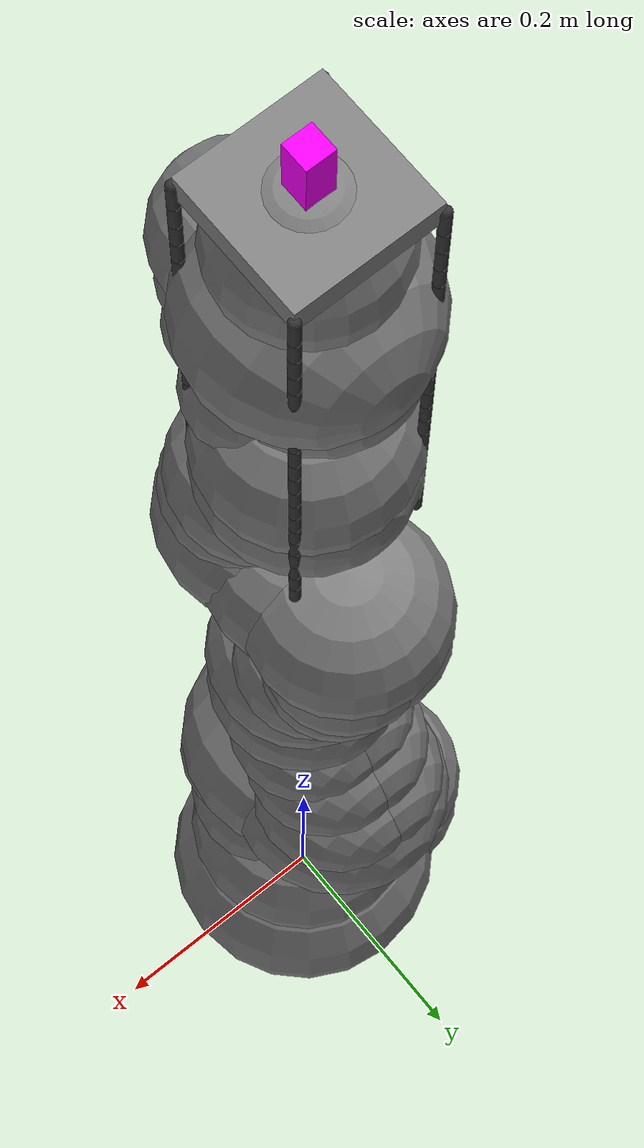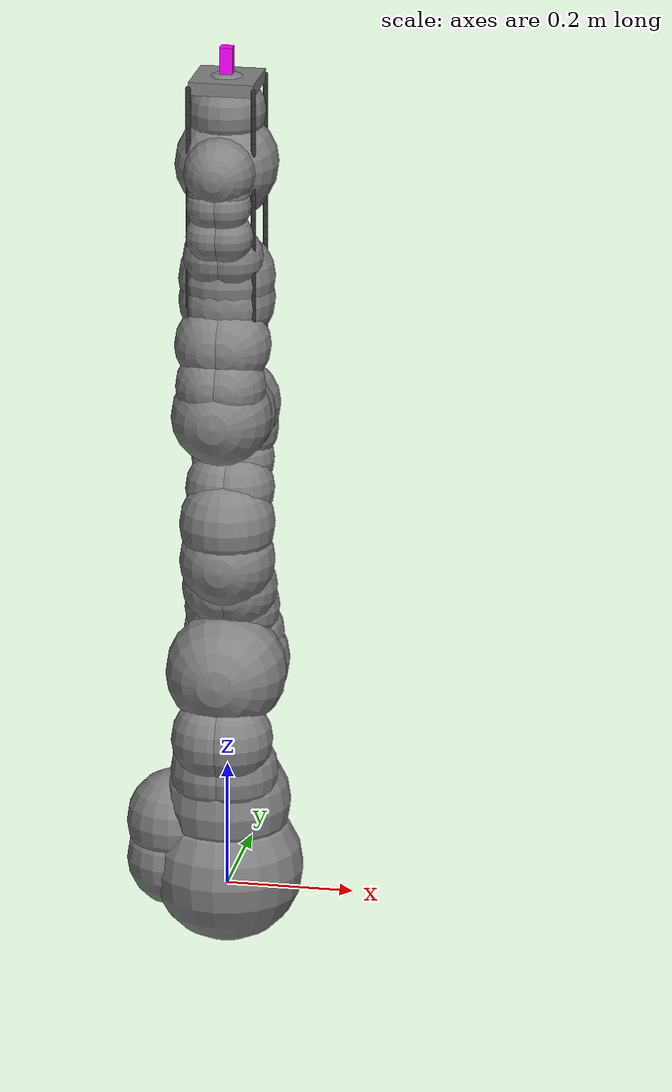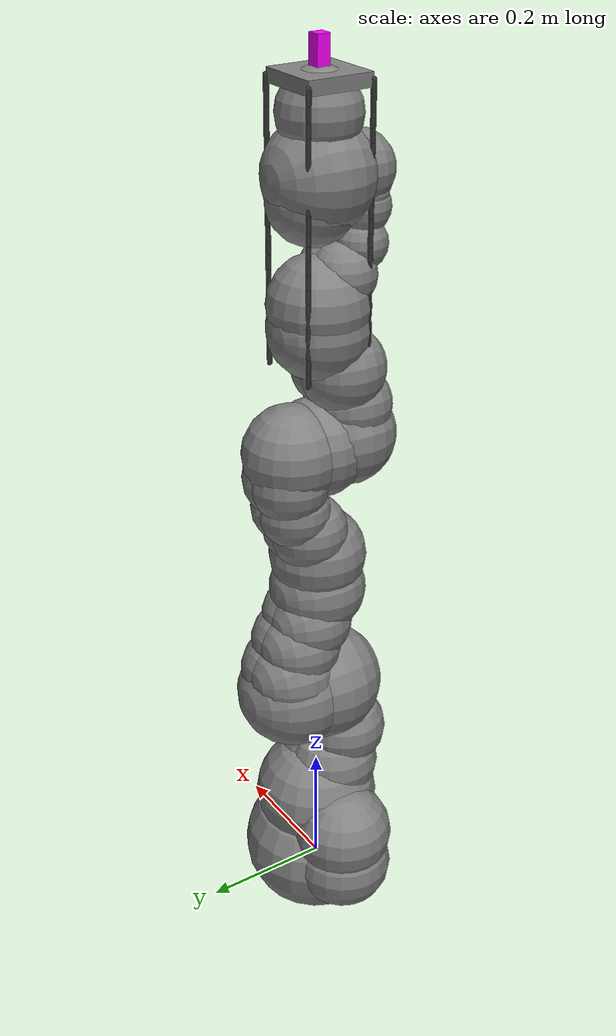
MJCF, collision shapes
<mujoco model="iiwa14">
  <compiler angle="radian" meshdir="assets" autolimits="true"/>
  <option integrator="implicitfast"/>

  <default>
    <default class="iiwa">
      <material specular="0.5" shininess="0.25"/>
      <joint axis="0 0 1" damping="1.2"/>
      <general gaintype="fixed" biastype="affine" gainprm="0" biasprm="0 -50 -5"/>
      <default class="joint1">
        <joint range="-2.96706 2.96706"/>
        <general ctrlrange="-2.96706 2.96706"/>
        <default class="joint2">
          <joint range="-2.0944 2.0944"/>
          <general ctrlrange="-2.0944 2.0944"/>
        </default>
      </default>
      <default class="joint3">
        <joint range="-3.05433 3.05433"/>
        <general ctrlrange="-3.05433 3.05433"/>
      </default>
      <default class="visual">
        <geom type="mesh" contype="0" conaffinity="0" group="2" material="gray"/>
      </default>
      <default class="collision">
        <geom group="3"/>
      </default>
      <site size="0.001" rgba="1 0 0 1" group="4"/>
    </default>
  </default>

  <asset>
    <material class="iiwa" name="gray" rgba="0.4 0.4 0.4 1"/>
    <material class="iiwa" name="light_gray" rgba="0.6 0.6 0.6 1"/>
    <material class="iiwa" name="black" rgba="0 0 0 1"/>
    <material class="iiwa" name="orange" rgba="1 0.423529 0.0392157 1"/>
    <material name="rope" rgba="0.2 0.2 0.2 1"/>

    <mesh file="link_0.obj"/>
    <mesh file="link_1.obj"/>
    <mesh file="link_2_orange.obj"/>
    <mesh file="link_2_grey.obj"/>
    <mesh file="link_3.obj"/>
    <mesh file="band.obj"/>
    <mesh file="kuka.obj"/>
    <mesh file="link_4_orange.obj"/>
    <mesh file="link_4_grey.obj"/>
    <mesh file="link_5.obj"/>
    <mesh file="link_6_orange.obj"/>
    <mesh file="link_6_grey.obj"/>
    <mesh file="link_7.obj"/>
  </asset>

  <worldbody>
    <light name="top" pos="0 0 2" mode="trackcom"/>
    <body name="base" childclass="iiwa">
      <inertial mass="5" pos="-0.1 0 0.07" diaginertia="0.05 0.06 0.03"/>
      <geom class="visual" mesh="link_0"/>
      <geom class="collision" size="0.12" pos="0 0 0.03"/>
      <geom class="collision" size="0.08" pos="-0.08 0 0.103"/>
      <geom class="collision" size="0.08" pos="-0.08 0 0.04"/>
      <geom class="collision" size="0.1" pos="0 0 0.14"/>
      <body name="link1" pos="0 0 0.1575">
        <inertial mass="5.76" pos="0 -0.03 0.12" diaginertia="0.0333 0.033 0.0123"/>
        <joint name="joint1" class="joint1"/>
        <geom class="visual" mesh="link_1"/>
        <geom class="collision" size="0.08" pos="0 0 -0.0005"/>
        <geom class="collision" size="0.075" pos="0.01 -0.025 0.0425"/>
        <geom class="collision" size="0.075" pos="-0.01 -0.025 0.0425"/>
        <geom class="collision" size="0.07" pos="0.01 -0.045 0.1025"/>
        <geom class="collision" size="0.07" pos="-0.01 -0.045 0.1025"/>
        <body name="link2" pos="0 0 0.2025" quat="0 0 1 1">
          <inertial mass="6.35" pos="0.0003 0.059 0.042" diaginertia="0.0305 0.0304 0.011" quat="0 0 1 1"/>
          <joint name="joint2" class="joint2"/>
          <geom class="visual" material="orange" mesh="link_2_orange"/>
          <geom class="visual" mesh="link_2_grey"/>
          <geom class="collision" size="0.095" pos="0 0 -0.01"/>
          <geom class="collision" size="0.09" pos="0 0 0.045"/>
          <geom class="collision" size="0.07" pos="-0.01 0.04 0.054"/>
          <geom class="collision" size="0.065" pos="-0.01 0.09 0.04"/>
          <geom class="collision" size="0.065" pos="-0.01 0.13 0.02"/>
          <geom class="collision" size="0.07" pos="0.01 0.04 0.054"/>
          <geom class="collision" size="0.065" pos="0.01 0.09 0.04"/>
          <geom class="collision" size="0.065" pos="0.01 0.13 0.02"/>
          <geom class="collision" size="0.075" pos="0 0.18 0"/>
          <body name="link3" pos="0 0.2045 0" quat="0 0 1 1">
            <inertial mass="3.5" pos="0 0.03 0.13" diaginertia="0.025 0.0238 0.0076"/>
            <joint name="joint3" class="joint1"/>
            <geom class="visual" mesh="link_3"/>
            <geom class="visual" material="light_gray" mesh="band"/>
            <geom class="visual" material="black" mesh="kuka"/>
            <geom class="collision" size="0.075" pos="0 0 0.0355"/>
            <geom class="collision" size="0.06" pos="0.01 0.023 0.0855"/>
            <geom class="collision" size="0.055" pos="0.01 0.048 0.1255"/>
            <geom class="collision" size="0.06" pos="0.01 0.056 0.1755"/>
            <geom class="collision" size="0.06" pos="-0.01 0.023 0.0855"/>
            <geom class="collision" size="0.055" pos="-0.01 0.048 0.1255"/>
            <geom class="collision" size="0.06" pos="-0.01 0.056 0.1755"/>
            <geom class="collision" size="0.075" pos="0 0.045 0.2155"/>
            <geom class="collision" size="0.075" pos="0 0 0.2155"/>
            <body name="link4" pos="0 0 0.2155" quat="1 1 0 0">
              <inertial mass="3.5" pos="0 0.067 0.034" diaginertia="0.017 0.0164 0.006" quat="1 1 0 0"/>
              <joint name="joint4" class="joint2"/>
              <geom class="visual" material="orange" mesh="link_4_orange"/>
              <geom class="visual" mesh="link_4_grey"/>
              <geom class="collision" size="0.078" pos="0 0.01 0.046"/>
              <geom class="collision" size="0.06" pos="0.01 0.06 0.052"/>
              <geom class="collision" size="0.065" pos="0.01 0.12 0.034"/>
              <geom class="collision" size="0.06" pos="-0.01 0.06 0.052"/>
              <geom class="collision" size="0.065" pos="-0.01 0.12 0.034"/>
              <geom class="collision" size="0.075" pos="0 0.184 0"/>
              <body name="link5" pos="0 0.1845 0" quat="0 0 1 1">
                <inertial mass="3.5" pos="0.0001 0.021 0.076" diaginertia="0.01 0.0087 0.00449"/>
                <joint name="joint5" class="joint1"/>
                <geom class="visual" mesh="link_5"/>
                <geom class="visual" material="light_gray" mesh="band"/>
                <geom class="visual" material="black" mesh="kuka"/>
                <geom class="collision" size="0.075" pos="0 0 0.0335"/>
                <geom class="collision" size="0.05" pos="-0.012 0.031 0.0755"/>
                <geom class="collision" size="0.05" pos="0.012 0.031 0.0755"/>
                <geom class="collision" size="0.04" pos="-0.012 0.06 0.1155"/>
                <geom class="collision" size="0.04" pos="0.012 0.06 0.1155"/>
                <geom class="collision" size="0.04" pos="-0.01 0.065 0.1655"/>
                <geom class="collision" size="0.04" pos="0.01 0.065 0.1655"/>
                <geom class="collision" size="0.035" pos="-0.012 0.065 0.1855"/>
                <geom class="collision" size="0.035" pos="0.012 0.065 0.1855"/>
                <body name="link6" pos="0 0 0.2155" quat="1 1 0 0">
                  <inertial mass="1.8" pos="0 0.0006 0.0004" diaginertia="0.0049 0.0047 0.0036" quat="1 1 0 0"/>
                  <joint name="joint6" class="joint2"/>
                  <geom class="visual" material="orange" mesh="link_6_orange"/>
                  <geom class="visual" mesh="link_6_grey"/>
                  <geom class="collision" size="0.055" pos="0 0 -0.059"/>
                  <geom class="collision" size="0.065" pos="0 -0.03 0.011"/>
                  <geom class="collision" size="0.08"/>
                  <body name="link7" pos="0 0.081 0" quat="0 0 1 1">
                    <inertial mass="1.2" pos="0 0 0.02" diaginertia="0.001 0.001 0.001"/>
                    <joint name="joint7" class="joint3"/>
                    <geom class="visual" mesh="link_7"/>
                    <geom class="collision" size="0.06" pos="0 0 0.001"/>
                    <site pos="0 0 0.045" name="attachment_site" size="0.01" rgba="0 1 1 1" type="sphere" group="1"/>

                    <!-- end-effector payload plate + rigid cables -->
                    <body name="hook_attachment" pos="0 0 0.045">
                      <geom type="box" size="0.05 0.05 0.01" pos="0 0 0"
                            rgba="0.5 0.5 0.5 0.8" mass="0.1"/>
                      <site name="hook_fl" pos="0.05 0.05 0.05" size="0.01" rgba="0 0 1 1"/>
                      <site name="hook_fr" pos="0.05 -0.05 0.05" size="0.01" rgba="0 0 1 1"/>
                      <site name="hook_rl" pos="-0.05 0.05 0.05" size="0.01" rgba="0 0 1 1"/>
                      <site name="hook_rr" pos="-0.05 -0.05 0.05" size="0.01" rgba="0 0 1 1"/>
                      <camera name="end_effector_cam"
                              pos="0 0 0"
                              xyaxes="1 0 0  0 1 0"
                              fovy="60"/>
                      <body name="rope_fl_root" pos="0.05 0.05 0">
                        <joint type="ball" damping="0.02"/>
                        <geom type="capsule"
                              fromto="0 0 0   0 0 -0.020000"
                              size="0.004000"
                              mass="0.01"
                              material="rope"/>

                        <body name="rope_fl_1" pos="0 0 -0.020000">
                          <geom type="capsule" fromto="0 0 0   0 0 -0.020000"
                                size="0.004000" mass="0.01" material="rope"/>
                          <joint type="ball" damping="0.02"/>

                          <body name="rope_fl_2" pos="0 0 -0.020000">
                            <geom type="capsule" fromto="0 0 0   0 0 -0.020000"
                                  size="0.004000" mass="0.01" material="rope"/>
                            <joint type="ball" damping="0.02"/>

                            <body name="rope_fl_3" pos="0 0 -0.020000">
                              <geom type="capsule" fromto="0 0 0   0 0 -0.020000"
                                    size="0.004000" mass="0.01" material="rope"/>
                              <joint type="ball" damping="0.02"/>

                              <body name="rope_fl_4" pos="0 0 -0.020000">
                                <geom type="capsule" fromto="0 0 0   0 0 -0.020000"
                                      size="0.004000" mass="0.01" material="rope"/>
                                <joint type="ball" damping="0.02"/>

                                <body name="rope_fl_5" pos="0 0 -0.020000">
                                  <geom type="capsule" fromto="0 0 0   0 0 -0.020000"
                                        size="0.004000" mass="0.01" material="rope"/>
                                  <joint type="ball" damping="0.02"/>

                                  <body name="rope_fl_6" pos="0 0 -0.020000">
                                    <geom type="capsule" fromto="0 0 0   0 0 -0.020000"
                                          size="0.004000" mass="0.01" material="rope"/>
                                    <joint type="ball" damping="0.02"/>

                                    <body name="rope_fl_7" pos="0 0 -0.020000">
                                      <geom type="capsule" fromto="0 0 0   0 0 -0.020000"
                                            size="0.004000" mass="0.01" material="rope"/>
                                      <joint type="ball" damping="0.02"/>

                                      <body name="rope_fl_8" pos="0 0 -0.020000">
                                        <geom type="capsule" fromto="0 0 0   0 0 -0.020000"
                                              size="0.004000" mass="0.01" material="rope"/>
                                        <joint type="ball" damping="0.02"/>

                                        <body name="rope_fl_9" pos="0 0 -0.020000">
                                          <geom type="capsule" fromto="0 0 0   0 0 -0.020000"
                                                size="0.004000" mass="0.01" material="rope"/>
                                          <joint type="ball" damping="0.02"/>

                                          <body name="rope_fl_10" pos="0 0 -0.020000">
                                            <geom type="capsule" fromto="0 0 0   0 0 -0.020000"
                                                  size="0.004000" mass="0.01" material="rope"/>
                                            <joint type="ball" damping="0.02"/>

                                            <body name="rope_fl_11" pos="0 0 -0.020000">
                                              <geom type="capsule" fromto="0 0 0   0 0 -0.020000"
                                                    size="0.004000" mass="0.01" material="rope"/>
                                              <joint type="ball" damping="0.02"/>

                                              <body name="rope_fl_12" pos="0 0 -0.020000">
                                                <geom type="capsule" fromto="0 0 0   0 0 -0.020000"
                                                      size="0.004000" mass="0.01" material="rope"/>
                                                <joint type="ball" damping="0.02"/>

                                                <body name="rope_fl_13" pos="0 0 -0.020000">
                                                  <geom type="capsule" fromto="0 0 0   0 0 -0.020000"
                                                        size="0.004000" mass="0.01" material="rope"/>
                                                  <joint type="ball" damping="0.02"/>

                                                  <body name="rope_fl_14" pos="0 0 -0.020000">
                                                    <geom type="capsule" fromto="0 0 0   0 0 -0.020000"
                                                          size="0.004000" mass="0.01" material="rope"/>
                                                    <joint type="ball" damping="0.02"/>

                                                    <body name="rope_fl_15" pos="0 0 -0.020000">
                                                      <geom type="capsule" fromto="0 0 0   0 0 -0.020000"
                                                            size="0.004000" mass="0.01" material="rope"/>
                                                      <joint type="ball" damping="0.02"/>

                                                      <body name="rope_fl_16" pos="0 0 -0.020000">
                                                        <geom type="capsule" fromto="0 0 0   0 0 -0.020000"
                                                              size="0.004000" mass="0.01" material="rope"/>
                                                        <joint type="ball" damping="0.02"/>

                                                        <body name="rope_fl_17" pos="0 0 -0.020000">
                                                          <geom type="capsule" fromto="0 0 0   0 0 -0.020000"
                                                                size="0.004000" mass="0.01" material="rope"/>
                                                          <joint type="ball" damping="0.02"/>

                                                          <body name="rope_fl_18" pos="0 0 -0.020000">
                                                            <geom type="capsule" fromto="0 0 0   0 0 -0.020000"
                                                                  size="0.004000" mass="0.01" material="rope"/>
                                                            <joint type="ball" damping="0.02"/>

                                                            <body name="rope_fl_19" pos="0 0 -0.020000">
                                                              <geom type="capsule" fromto="0 0 0   0 0 -0.020000"
                                                                    size="0.004000" mass="0.01" material="rope"/>
                                                              <joint type="ball" damping="0.02"/>

                                                              <site name="rope_fl_end" pos="0 0 -0.020000"
                                                                    size="0.006" rgba="1 1 0 1"/>
                                                            </body>
                                                          </body>
                                                        </body>
                                                      </body>
                                                    </body>
                                                  </body>
                                                </body>
                                              </body>
                                            </body>
                                          </body>
                                        </body>
                                      </body>
                                    </body>
                                  </body>
                                </body>
                              </body>
                            </body>
                          </body>
                        </body>
                      </body>
                      <body name="rope_fr_root" pos="0.05 -0.05 0">
                        <joint type="ball" damping="0.02"/>
                        <geom type="capsule"
                              fromto="0 0 0   0 0 -0.020000"
                              size="0.004000"
                              mass="0.01"
                              material="rope"/>

                        <body name="rope_fr_1" pos="0 0 -0.020000">
                          <geom type="capsule" fromto="0 0 0   0 0 -0.020000"
                                size="0.004000" mass="0.01" material="rope"/>
                          <joint type="ball" damping="0.02"/>

                          <body name="rope_fr_2" pos="0 0 -0.020000">
                            <geom type="capsule" fromto="0 0 0   0 0 -0.020000"
                                  size="0.004000" mass="0.01" material="rope"/>
                            <joint type="ball" damping="0.02"/>

                            <body name="rope_fr_3" pos="0 0 -0.020000">
                              <geom type="capsule" fromto="0 0 0   0 0 -0.020000"
                                    size="0.004000" mass="0.01" material="rope"/>
                              <joint type="ball" damping="0.02"/>

                              <body name="rope_fr_4" pos="0 0 -0.020000">
                                <geom type="capsule" fromto="0 0 0   0 0 -0.020000"
                                      size="0.004000" mass="0.01" material="rope"/>
                                <joint type="ball" damping="0.02"/>

                                <body name="rope_fr_5" pos="0 0 -0.020000">
                                  <geom type="capsule" fromto="0 0 0   0 0 -0.020000"
                                        size="0.004000" mass="0.01" material="rope"/>
                                  <joint type="ball" damping="0.02"/>

                                  <body name="rope_fr_6" pos="0 0 -0.020000">
                                    <geom type="capsule" fromto="0 0 0   0 0 -0.020000"
                                          size="0.004000" mass="0.01" material="rope"/>
                                    <joint type="ball" damping="0.02"/>

                                    <body name="rope_fr_7" pos="0 0 -0.020000">
                                      <geom type="capsule" fromto="0 0 0   0 0 -0.020000"
                                            size="0.004000" mass="0.01" material="rope"/>
                                      <joint type="ball" damping="0.02"/>

                                      <body name="rope_fr_8" pos="0 0 -0.020000">
                                        <geom type="capsule" fromto="0 0 0   0 0 -0.020000"
                                              size="0.004000" mass="0.01" material="rope"/>
                                        <joint type="ball" damping="0.02"/>

                                        <body name="rope_fr_9" pos="0 0 -0.020000">
                                          <geom type="capsule" fromto="0 0 0   0 0 -0.020000"
                                                size="0.004000" mass="0.01" material="rope"/>
                                          <joint type="ball" damping="0.02"/>

                                          <body name="rope_fr_10" pos="0 0 -0.020000">
                                            <geom type="capsule" fromto="0 0 0   0 0 -0.020000"
                                                  size="0.004000" mass="0.01" material="rope"/>
                                            <joint type="ball" damping="0.02"/>

                                            <body name="rope_fr_11" pos="0 0 -0.020000">
                                              <geom type="capsule" fromto="0 0 0   0 0 -0.020000"
                                                    size="0.004000" mass="0.01" material="rope"/>
                                              <joint type="ball" damping="0.02"/>

                                              <body name="rope_fr_12" pos="0 0 -0.020000">
                                                <geom type="capsule" fromto="0 0 0   0 0 -0.020000"
                                                      size="0.004000" mass="0.01" material="rope"/>
                                                <joint type="ball" damping="0.02"/>

                                                <body name="rope_fr_13" pos="0 0 -0.020000">
                                                  <geom type="capsule" fromto="0 0 0   0 0 -0.020000"
                                                        size="0.004000" mass="0.01" material="rope"/>
                                                  <joint type="ball" damping="0.02"/>

                                                  <body name="rope_fr_14" pos="0 0 -0.020000">
                                                    <geom type="capsule" fromto="0 0 0   0 0 -0.020000"
                                                          size="0.004000" mass="0.01" material="rope"/>
                                                    <joint type="ball" damping="0.02"/>

                                                    <body name="rope_fr_15" pos="0 0 -0.020000">
                                                      <geom type="capsule" fromto="0 0 0   0 0 -0.020000"
                                                            size="0.004000" mass="0.01" material="rope"/>
                                                      <joint type="ball" damping="0.02"/>

                                                      <body name="rope_fr_16" pos="0 0 -0.020000">
                                                        <geom type="capsule" fromto="0 0 0   0 0 -0.020000"
                                                              size="0.004000" mass="0.01" material="rope"/>
                                                        <joint type="ball" damping="0.02"/>

                                                        <body name="rope_fr_17" pos="0 0 -0.020000">
                                                          <geom type="capsule" fromto="0 0 0   0 0 -0.020000"
                                                                size="0.004000" mass="0.01" material="rope"/>
                                                          <joint type="ball" damping="0.02"/>

                                                          <body name="rope_fr_18" pos="0 0 -0.020000">
                                                            <geom type="capsule" fromto="0 0 0   0 0 -0.020000"
                                                                  size="0.004000" mass="0.01" material="rope"/>
                                                            <joint type="ball" damping="0.02"/>

                                                            <body name="rope_fr_19" pos="0 0 -0.020000">
                                                              <geom type="capsule" fromto="0 0 0   0 0 -0.020000"
                                                                    size="0.004000" mass="0.01" material="rope"/>
                                                              <joint type="ball" damping="0.02"/>

                                                              <site name="rope_fr_end" pos="0 0 -0.020000"
                                                                    size="0.006" rgba="1 1 0 1"/>
                                                            </body>
                                                          </body>
                                                        </body>
                                                      </body>
                                                    </body>
                                                  </body>
                                                </body>
                                              </body>
                                            </body>
                                          </body>
                                        </body>
                                      </body>
                                    </body>
                                  </body>
                                </body>
                              </body>
                            </body>
                          </body>
                        </body>
                      </body>
                      <body name="rope_rl_root" pos="-0.05 0.05 0">
                        <joint type="ball" damping="0.02"/>
                        <geom type="capsule"
                              fromto="0 0 0   0 0 -0.020000"
                              size="0.004000"
                              mass="0.01"
                              material="rope"/>

                        <body name="rope_rl_1" pos="0 0 -0.020000">
                          <geom type="capsule" fromto="0 0 0   0 0 -0.020000"
                                size="0.004000" mass="0.01" material="rope"/>
                          <joint type="ball" damping="0.02"/>

                          <body name="rope_rl_2" pos="0 0 -0.020000">
                            <geom type="capsule" fromto="0 0 0   0 0 -0.020000"
                                  size="0.004000" mass="0.01" material="rope"/>
                            <joint type="ball" damping="0.02"/>

                            <body name="rope_rl_3" pos="0 0 -0.020000">
                              <geom type="capsule" fromto="0 0 0   0 0 -0.020000"
                                    size="0.004000" mass="0.01" material="rope"/>
                              <joint type="ball" damping="0.02"/>

                              <body name="rope_rl_4" pos="0 0 -0.020000">
                                <geom type="capsule" fromto="0 0 0   0 0 -0.020000"
                                      size="0.004000" mass="0.01" material="rope"/>
                                <joint type="ball" damping="0.02"/>

                                <body name="rope_rl_5" pos="0 0 -0.020000">
                                  <geom type="capsule" fromto="0 0 0   0 0 -0.020000"
                                        size="0.004000" mass="0.01" material="rope"/>
                                  <joint type="ball" damping="0.02"/>

                                  <body name="rope_rl_6" pos="0 0 -0.020000">
                                    <geom type="capsule" fromto="0 0 0   0 0 -0.020000"
                                          size="0.004000" mass="0.01" material="rope"/>
                                    <joint type="ball" damping="0.02"/>

                                    <body name="rope_rl_7" pos="0 0 -0.020000">
                                      <geom type="capsule" fromto="0 0 0   0 0 -0.020000"
                                            size="0.004000" mass="0.01" material="rope"/>
                                      <joint type="ball" damping="0.02"/>

                                      <body name="rope_rl_8" pos="0 0 -0.020000">
                                        <geom type="capsule" fromto="0 0 0   0 0 -0.020000"
                                              size="0.004000" mass="0.01" material="rope"/>
                                        <joint type="ball" damping="0.02"/>

                                        <body name="rope_rl_9" pos="0 0 -0.020000">
                                          <geom type="capsule" fromto="0 0 0   0 0 -0.020000"
                                                size="0.004000" mass="0.01" material="rope"/>
                                          <joint type="ball" damping="0.02"/>

                                          <body name="rope_rl_10" pos="0 0 -0.020000">
                                            <geom type="capsule" fromto="0 0 0   0 0 -0.020000"
                                                  size="0.004000" mass="0.01" material="rope"/>
                                            <joint type="ball" damping="0.02"/>

                                            <body name="rope_rl_11" pos="0 0 -0.020000">
                                              <geom type="capsule" fromto="0 0 0   0 0 -0.020000"
                                                    size="0.004000" mass="0.01" material="rope"/>
                                              <joint type="ball" damping="0.02"/>

                                              <body name="rope_rl_12" pos="0 0 -0.020000">
                                                <geom type="capsule" fromto="0 0 0   0 0 -0.020000"
                                                      size="0.004000" mass="0.01" material="rope"/>
                                                <joint type="ball" damping="0.02"/>

                                                <body name="rope_rl_13" pos="0 0 -0.020000">
                                                  <geom type="capsule" fromto="0 0 0   0 0 -0.020000"
                                                        size="0.004000" mass="0.01" material="rope"/>
                                                  <joint type="ball" damping="0.02"/>

                                                  <body name="rope_rl_14" pos="0 0 -0.020000">
                                                    <geom type="capsule" fromto="0 0 0   0 0 -0.020000"
                                                          size="0.004000" mass="0.01" material="rope"/>
                                                    <joint type="ball" damping="0.02"/>

                                                    <body name="rope_rl_15" pos="0 0 -0.020000">
                                                      <geom type="capsule" fromto="0 0 0   0 0 -0.020000"
                                                            size="0.004000" mass="0.01" material="rope"/>
                                                      <joint type="ball" damping="0.02"/>

                                                      <body name="rope_rl_16" pos="0 0 -0.020000">
                                                        <geom type="capsule" fromto="0 0 0   0 0 -0.020000"
                                                              size="0.004000" mass="0.01" material="rope"/>
                                                        <joint type="ball" damping="0.02"/>

                                                        <body name="rope_rl_17" pos="0 0 -0.020000">
                                                          <geom type="capsule" fromto="0 0 0   0 0 -0.020000"
                                                                size="0.004000" mass="0.01" material="rope"/>
                                                          <joint type="ball" damping="0.02"/>

                                                          <body name="rope_rl_18" pos="0 0 -0.020000">
                                                            <geom type="capsule" fromto="0 0 0   0 0 -0.020000"
                                                                  size="0.004000" mass="0.01" material="rope"/>
                                                            <joint type="ball" damping="0.02"/>

                                                            <body name="rope_rl_19" pos="0 0 -0.020000">
                                                              <geom type="capsule" fromto="0 0 0   0 0 -0.020000"
                                                                    size="0.004000" mass="0.01" material="rope"/>
                                                              <joint type="ball" damping="0.02"/>

                                                              <site name="rope_rl_end" pos="0 0 -0.020000"
                                                                    size="0.006" rgba="1 1 0 1"/>
                                                            </body>
                                                          </body>
                                                        </body>
                                                      </body>
                                                    </body>
                                                  </body>
                                                </body>
                                              </body>
                                            </body>
                                          </body>
                                        </body>
                                      </body>
                                    </body>
                                  </body>
                                </body>
                              </body>
                            </body>
                          </body>
                        </body>
                      </body>
                      <body name="rope_rr_root" pos="-0.05 -0.05 0">
                        <joint type="ball" damping="0.02"/>
                        <geom type="capsule"
                              fromto="0 0 0   0 0 -0.020000"
                              size="0.004000"
                              mass="0.01"
                              material="rope"/>

                        <body name="rope_rr_1" pos="0 0 -0.020000">
                          <geom type="capsule" fromto="0 0 0   0 0 -0.020000"
                                size="0.004000" mass="0.01" material="rope"/>
                          <joint type="ball" damping="0.02"/>

                          <body name="rope_rr_2" pos="0 0 -0.020000">
                            <geom type="capsule" fromto="0 0 0   0 0 -0.020000"
                                  size="0.004000" mass="0.01" material="rope"/>
                            <joint type="ball" damping="0.02"/>

                            <body name="rope_rr_3" pos="0 0 -0.020000">
                              <geom type="capsule" fromto="0 0 0   0 0 -0.020000"
                                    size="0.004000" mass="0.01" material="rope"/>
                              <joint type="ball" damping="0.02"/>

                              <body name="rope_rr_4" pos="0 0 -0.020000">
                                <geom type="capsule" fromto="0 0 0   0 0 -0.020000"
                                      size="0.004000" mass="0.01" material="rope"/>
                                <joint type="ball" damping="0.02"/>

                                <body name="rope_rr_5" pos="0 0 -0.020000">
                                  <geom type="capsule" fromto="0 0 0   0 0 -0.020000"
                                        size="0.004000" mass="0.01" material="rope"/>
                                  <joint type="ball" damping="0.02"/>

                                  <body name="rope_rr_6" pos="0 0 -0.020000">
                                    <geom type="capsule" fromto="0 0 0   0 0 -0.020000"
                                          size="0.004000" mass="0.01" material="rope"/>
                                    <joint type="ball" damping="0.02"/>

                                    <body name="rope_rr_7" pos="0 0 -0.020000">
                                      <geom type="capsule" fromto="0 0 0   0 0 -0.020000"
                                            size="0.004000" mass="0.01" material="rope"/>
                                      <joint type="ball" damping="0.02"/>

                                      <body name="rope_rr_8" pos="0 0 -0.020000">
                                        <geom type="capsule" fromto="0 0 0   0 0 -0.020000"
                                              size="0.004000" mass="0.01" material="rope"/>
                                        <joint type="ball" damping="0.02"/>

                                        <body name="rope_rr_9" pos="0 0 -0.020000">
                                          <geom type="capsule" fromto="0 0 0   0 0 -0.020000"
                                                size="0.004000" mass="0.01" material="rope"/>
                                          <joint type="ball" damping="0.02"/>

                                          <body name="rope_rr_10" pos="0 0 -0.020000">
                                            <geom type="capsule" fromto="0 0 0   0 0 -0.020000"
                                                  size="0.004000" mass="0.01" material="rope"/>
                                            <joint type="ball" damping="0.02"/>

                                            <body name="rope_rr_11" pos="0 0 -0.020000">
                                              <geom type="capsule" fromto="0 0 0   0 0 -0.020000"
                                                    size="0.004000" mass="0.01" material="rope"/>
                                              <joint type="ball" damping="0.02"/>

                                              <body name="rope_rr_12" pos="0 0 -0.020000">
                                                <geom type="capsule" fromto="0 0 0   0 0 -0.020000"
                                                      size="0.004000" mass="0.01" material="rope"/>
                                                <joint type="ball" damping="0.02"/>

                                                <body name="rope_rr_13" pos="0 0 -0.020000">
                                                  <geom type="capsule" fromto="0 0 0   0 0 -0.020000"
                                                        size="0.004000" mass="0.01" material="rope"/>
                                                  <joint type="ball" damping="0.02"/>

                                                  <body name="rope_rr_14" pos="0 0 -0.020000">
                                                    <geom type="capsule" fromto="0 0 0   0 0 -0.020000"
                                                          size="0.004000" mass="0.01" material="rope"/>
                                                    <joint type="ball" damping="0.02"/>

                                                    <body name="rope_rr_15" pos="0 0 -0.020000">
                                                      <geom type="capsule" fromto="0 0 0   0 0 -0.020000"
                                                            size="0.004000" mass="0.01" material="rope"/>
                                                      <joint type="ball" damping="0.02"/>

                                                      <body name="rope_rr_16" pos="0 0 -0.020000">
                                                        <geom type="capsule" fromto="0 0 0   0 0 -0.020000"
                                                              size="0.004000" mass="0.01" material="rope"/>
                                                        <joint type="ball" damping="0.02"/>

                                                        <body name="rope_rr_17" pos="0 0 -0.020000">
                                                          <geom type="capsule" fromto="0 0 0   0 0 -0.020000"
                                                                size="0.004000" mass="0.01" material="rope"/>
                                                          <joint type="ball" damping="0.02"/>

                                                          <body name="rope_rr_18" pos="0 0 -0.020000">
                                                            <geom type="capsule" fromto="0 0 0   0 0 -0.020000"
                                                                  size="0.004000" mass="0.01" material="rope"/>
                                                            <joint type="ball" damping="0.02"/>

                                                            <body name="rope_rr_19" pos="0 0 -0.020000">
                                                              <geom type="capsule" fromto="0 0 0   0 0 -0.020000"
                                                                    size="0.004000" mass="0.01" material="rope"/>
                                                              <joint type="ball" damping="0.02"/>

                                                              <site name="rope_rr_end" pos="0 0 -0.020000"
                                                                    size="0.006" rgba="1 1 0 1"/>
                                                            </body>
                                                          </body>
                                                        </body>
                                                      </body>
                                                    </body>
                                                  </body>
                                                </body>
                                              </body>
                                            </body>
                                          </body>
                                        </body>
                                      </body>
                                    </body>
                                  </body>
                                </body>
                              </body>
                            </body>
                          </body>
                        </body>
                      </body>
                    </body>
                    <site pos="0 0 0" name="end_effector_site" type="box" size="0.01 0.01 0.1" rgba="1 0 1 1" group="1"/>
                  </body>
                </body>
              </body>
            </body>
          </body>
        </body>
      </body>
    </body>
  </worldbody>

  <contact>
    <exclude body1="base" body2="link1"/>
    <exclude body1="base" body2="link2"/>
    <exclude body1="base" body2="link3"/>
    <exclude body1="link1" body2="link3"/>
    <exclude body1="link3" body2="link5"/>
    <exclude body1="link4" body2="link7"/>
    <exclude body1="link5" body2="link7"/>
  </contact>

</mujoco>
